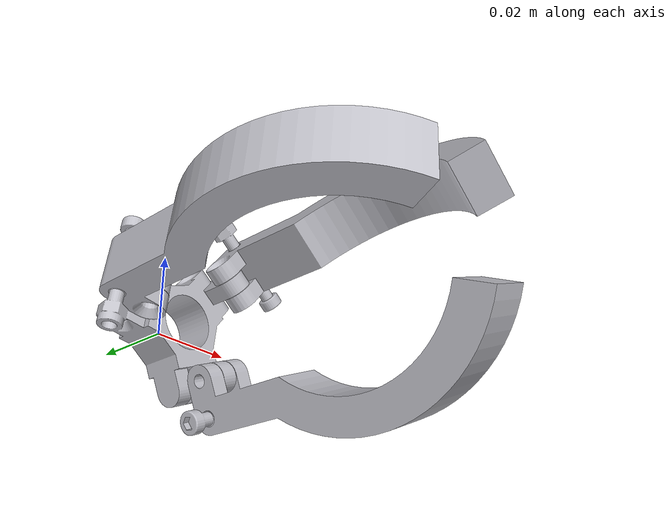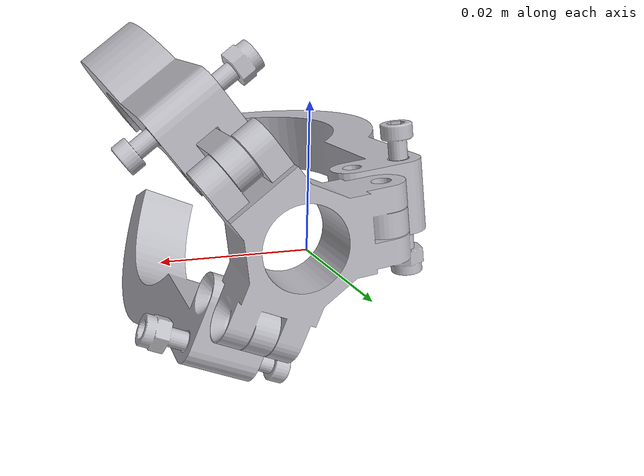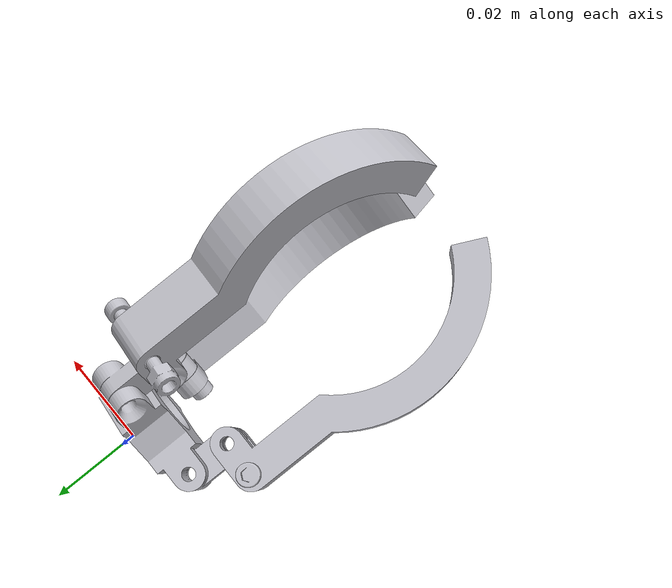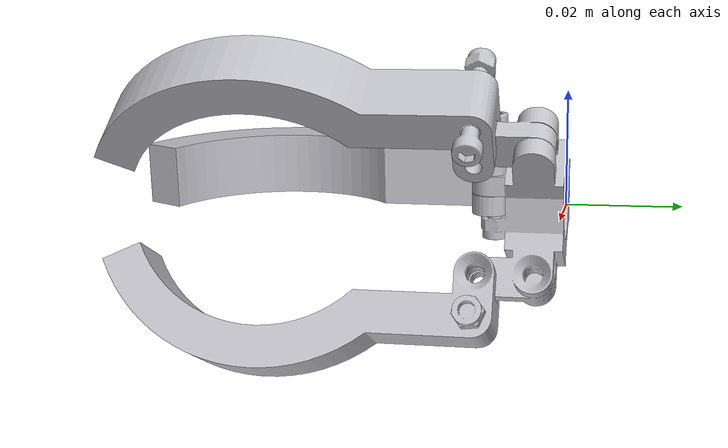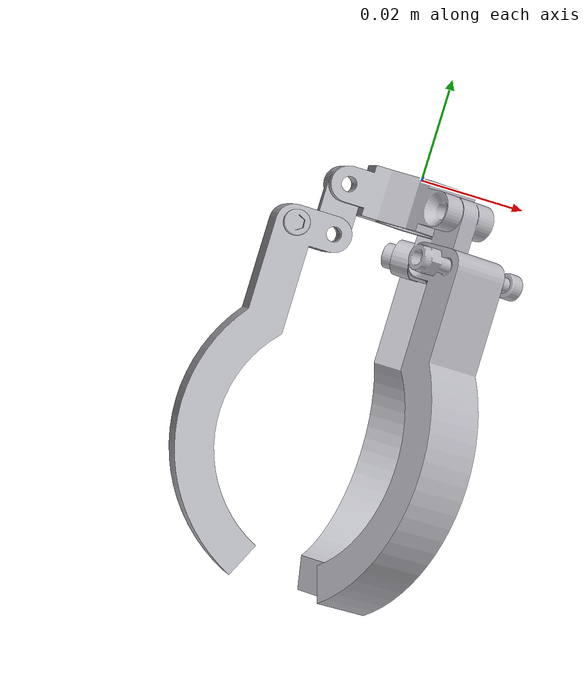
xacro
<?xml version="1.0" encoding="utf-8"?>

<robot xmlns:xacro="http://www.ros.org/wiki/xacro" name="tundra_gripper">

  <xacro:arg name="ns" default=""/>

  <link name="gripper_link"/>

<link name="palm">
  <inertial>
    <origin xyz="0.061664701708749915 0.08137303558404387 0.08022062245839305" rpy="0 0 0"/>
    <mass value="0.013667083672765958"/>
    <inertia ixx="2e-06" iyy="3e-06" izz="2e-06" ixy="-0.0" iyz="-0.0" ixz="-0.0"/>
  </inertial>
  <visual>
    <origin xyz="0 0 0" rpy="0 0 0"/>
    <geometry>
      <mesh filename="package://tundra_gripper/meshes/base_link.stl" scale="0.001 0.001 0.001"/>
    </geometry>
    <material name="silver"/>
  </visual>
  <collision>
    <origin xyz="0 0 0" rpy="0 0 0"/>
    <geometry>
      <mesh filename="package://tundra_gripper/meshes/base_link.stl" scale="0.001 0.001 0.001"/>
    </geometry>
  </collision>
</link>

  <joint name="palm_joint" type="fixed">
    <origin xyz="0 0 0" rpy="0 0 0"/>
    <parent link="gripper_link"/>
    <child link="palm"/>
  </joint>
  <link name="actuator_1">
    <inertial>
      <origin xyz="0.005491083174233274 -0.03206197503178041 -0.0023745477788477826" rpy="0 0 0"/>
      <mass value="0.018363032655382763"/>
      <inertia ixx="8e-06" iyy="1e-06" izz="8e-06" ixy="0.0" iyz="0.0" ixz="-0.0"/>
    </inertial>
    <visual>
      <origin xyz="-0.008797 0.014908 -0.021091" rpy="0 0 0"/>
      <geometry>
        <mesh filename="package://tundra_gripper/meshes/actuator_1_2.stl" scale="0.001 0.001 0.001"/>
      </geometry>
      <material name="silver"/>
    </visual>
    <collision>
      <origin xyz="-0.008797 0.014908 -0.021091" rpy="0 0 0"/>
      <geometry>
        <mesh filename="package://tundra_gripper/meshes/actuator_1_2.stl" scale="0.001 0.001 0.001"/>
      </geometry>
    </collision>
  </link>

  <joint name="actuator_joint_1" type="revolute">
    <origin xyz="0.008797 -0.014908 0.021091" rpy="0 0 0"/>
    <parent link="palm"/>
    <child link="actuator_1"/>
    <axis xyz="-0.792929 0.002094 0.609311"/>
    <limit upper="1.22173" lower="0.0" effort="100" velocity="100"/>
  </joint>

    <link name="actuator_2">
      <inertial>
        <origin xyz="-0.0048912825904506435 -0.03207131009530898 -0.003353552242169211" rpy="0 0 0"/>
        <mass value="0.018363032655382763"/>
        <inertia ixx="8e-06" iyy="1e-06" izz="8e-06" ixy="0.0" iyz="-0.0" ixz="0.0"/>
      </inertial>
      <visual>
        <origin xyz="-0.013822 0.015067 0.017999" rpy="0 0 0"/>
        <geometry>
          <mesh filename="package://tundra_gripper/meshes/actuator_2_1.stl" scale="0.001 0.001 0.001"/>
        </geometry>
        <material name="silver"/>
      </visual>
      <collision>
        <origin xyz="-0.013822 0.015067 0.017999" rpy="0 0 0"/>
        <geometry>
          <mesh filename="package://tundra_gripper/meshes/actuator_2_1.stl" scale="0.001 0.001 0.001"/>
        </geometry>
      </collision>
    </link>

    <joint name="actuator_joint_2" type="revolute">
      <origin xyz="0.013822 -0.015067 -0.017999" rpy="0 0 0"/>
      <parent link="palm"/>
      <child link="actuator_2"/>
      <axis xyz="0.924146 0.002094 0.382034"/>
      <limit upper="1.22173" lower="0.0" effort="100" velocity="100"/>
    </joint>

    <link name="actuator_3">
      <inertial>
        <origin xyz="-0.0005475032335578722 -0.03202939701353134 0.006126837510314051" rpy="0 0 0"/>
        <mass value="0.018363032655382763"/>
        <inertia ixx="8e-06" iyy="1e-06" izz="8e-06" ixy="-0.0" iyz="0.0" ixz="0.0"/>
      </inertial>
      <visual>
        <origin xyz="0.022563 0.015024 0.00279" rpy="0 0 0"/>
        <geometry>
          <mesh filename="package://tundra_gripper/meshes/actuator_3_1.stl" scale="0.001 0.001 0.001"/>
        </geometry>
        <material name="silver"/>
      </visual>
      <collision>
        <origin xyz="0.022563 0.015024 0.00279" rpy="0 0 0"/>
        <geometry>
          <mesh filename="package://tundra_gripper/meshes/actuator_3_1.stl" scale="0.001 0.001 0.001"/>
        </geometry>
      </collision>
    </link>

    <joint name="actuator_joint_3" type="revolute">
      <origin xyz="-0.022563 -0.015024 -0.00279" rpy="0 0 0"/>
      <parent link="palm"/>
      <child link="actuator_3"/>
      <axis xyz="-0.131217 -0.004189 -0.991345"/>
      <limit upper="1.22173" lower="0.0" effort="100" velocity="100"/>
    </joint>

    <transmission name="transmission_1">
        <type>transmission_interface/SimpleTransmission</type>
        <joint name="actuator_joint_1">
            <hardwareInterface>hardware_interface/PositionJointInterface</hardwareInterface>
        </joint>
        <actuator name="motor_1">
            <hardwareInterface>hardware_interface/PositionJointInterface</hardwareInterface>
            <mechanicalReduction>1</mechanicalReduction>
        </actuator>
    </transmission>

    <transmission name="transmission_2">
        <type>transmission_interface/SimpleTransmission</type>
        <joint name="actuator_joint_2">
            <hardwareInterface>hardware_interface/PositionJointInterface</hardwareInterface>
        </joint>
        <actuator name="motor_2">
            <hardwareInterface>hardware_interface/PositionJointInterface</hardwareInterface>
            <mechanicalReduction>1</mechanicalReduction>
        </actuator>
    </transmission>

    <transmission name="transmission_3">
        <type>transmission_interface/SimpleTransmission</type>
        <joint name="actuator_joint_3">
            <hardwareInterface>hardware_interface/PositionJointInterface</hardwareInterface>
        </joint>
        <actuator name="motor_3">
            <hardwareInterface>hardware_interface/PositionJointInterface</hardwareInterface>
            <mechanicalReduction>1</mechanicalReduction>
        </actuator>
    </transmission>

    <gazebo>
      <plugin name="gazebo_ros_control" filename="libgazebo_ros_control.so">
        <robotNamespace>$(arg ns)/gripper</robotNamespace>
      </plugin>
    </gazebo>

    <gazebo>
    <plugin name="gazebo_grasp_fix" filename="libgazebo_grasp_fix.so">
          <arm>
            <arm_name>tundra_gripper</arm_name>
            <palm_link>link_5</palm_link> <!-- Gazebo combines everything with a fixed joint -->
            <gripper_link> actuator_1 </gripper_link>
            <gripper_link> actuator_2 </gripper_link>
            <gripper_link> actuator_3 </gripper_link>
          </arm>
        <forces_angle_tolerance>100</forces_angle_tolerance>
        <update_rate>10</update_rate>
        <grip_count_threshold>1</grip_count_threshold>
        <max_grip_count>4</max_grip_count>
        <release_tolerance>0.007</release_tolerance>
        <disable_collisions_on_attach>false</disable_collisions_on_attach>
        <contact_topic>__default_topic__</contact_topic>
      </plugin>
    </gazebo>

    <gazebo reference="actuator_1">
        <selfCollide>true</selfCollide>
    </gazebo>
    <gazebo reference="actuator_2">
        <selfCollide>true</selfCollide>
    </gazebo>
      <gazebo reference="actuator_3">
        <selfCollide>true</selfCollide>
    </gazebo>
</robot>
